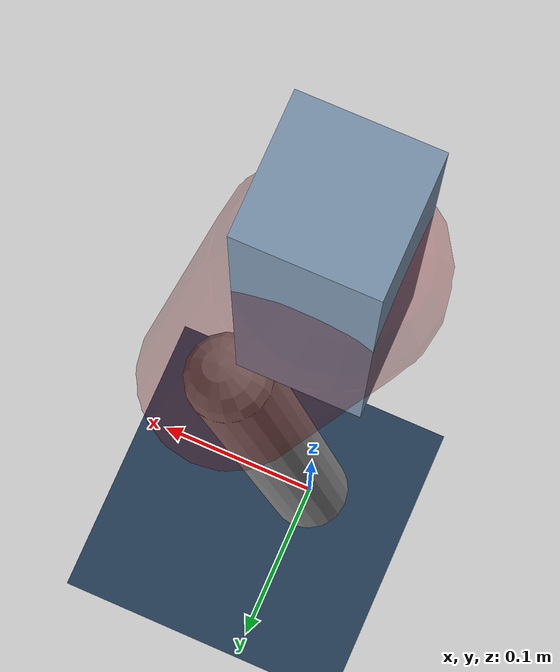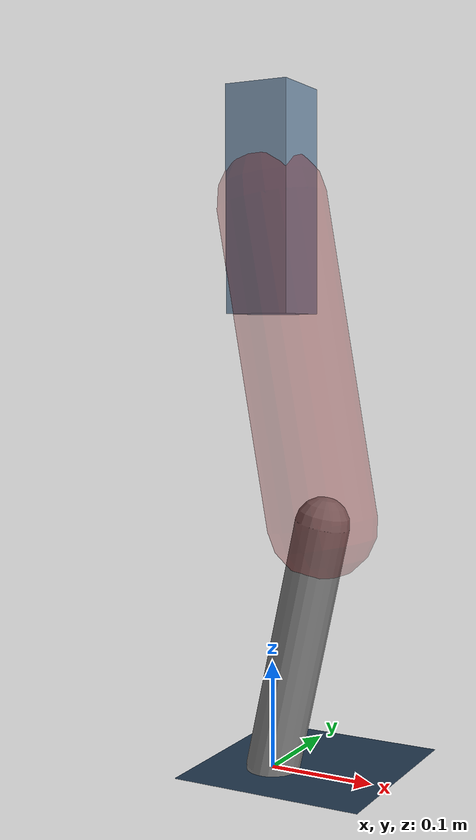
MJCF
<mujoco model="Hopper2D">
	<compiler inertiafromgeom="true" angle="radian" />
	<option timestep="0.001" integrator="implicit" cone="elliptic" solver="Newton" tolerance="1e-10" />

	<default>
		<geom contype="1" conaffinity="1" condim="3" friction="2 0.005 0.0001" solref="0.005 1" />
		<joint limited="true" damping="0.1" />
	</default>

	<asset>
		<texture name="skybox" type="skybox" builtin="gradient" rgb1=".4 .6 .8" rgb2="0 0 0" width="800" height="800" />
		<texture name="grid" type="2d" builtin="checker" rgb1=".1 .2 .3" rgb2=".2 .3 .4" width="300" height="300" mark="edge" markrgb=".2 .3 .4" />
		<material name="ground" texture="grid" texrepeat="1 1" texuniform="true" reflectance="0.1" />
		<material name="leg" rgba="0.5 0.6 0.7 1" />
	</asset>

	<worldbody>

		<geom name="floor" type="plane" size="5 5 0.25" material="ground" />

		<light directional="false" diffuse="0.8 0.8 0.8" specular="0.3 0.3 0.3" pos="0 0 2" dir="0 0 -1" />
		<light mode="targetbodycom" target="base" directional="false" diffuse="0.8 0.8 0.8" specular="0.3 0.3 0.3" pos="0 0 2" dir="0 0 -1" />

		<camera name="fixed" pos="0 -2 1" xyaxes="1 0 0 0 0 1" />
		<camera name="tracking" mode="trackcom" pos="0 -3 1" />

		<body name="root" pos="0 0 0.5189688043169796">
			<joint name="slide_x" type="slide" axis="1 0 0" range="-100 100" />
			<joint name="slide_z" type="slide" axis="0 0 1" range="0 10" />

			<body name="base" pos="0 0 0">
				<geom name="torso" type="box" size="0.03 0.03 0.1" mass="2.524" material="leg" />

				<body name="link1" pos="0 0 0" euler="0 1.3955762119835937 0">
					<joint type="hinge" axis="0 -1 0" pos="0 0 0" name="hinge1" limited="true" range="-3.14 3.14" stiffness="0" damping="0.1" />
					<geom name="thigh" type="capsule" fromto="0 0 0 0.29196397770101423 0 0" size="0.05" rgba="0.5 0 0 0.3" mass="0.9671027397927384" />

					<body name="link2" pos="0.29196397770101423 0 0" euler="0 0.39165510434190265 0">
						<joint type="hinge" axis="0 -1 0" pos="0 0 0" name="hinge2" limited="true" range="-3.14 3.14" stiffness="0" damping="0.1" />
						<geom name="shank" type="capsule" fromto="0 0 0 0.23700482661596528 0 0" size="0.025" mass="0.43180386129277226" />

					</body>
				</body>
			</body>
		</body>
	</worldbody>

	<actuator>
		<motor name="torque1" joint="hinge1" ctrlrange="-49.24785324285774 49.24785324285774" ctrllimited="true" gear="1" />
		<motor name="torque2" joint="hinge2" ctrlrange="-52.49020625593165 52.49020625593165" ctrllimited="true" gear="1" />
	</actuator>
</mujoco>
